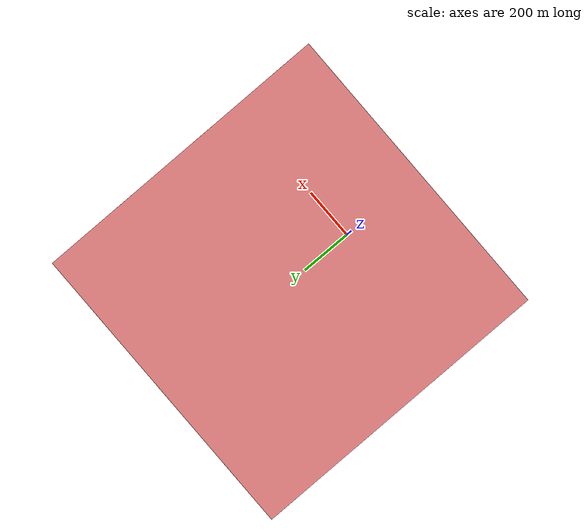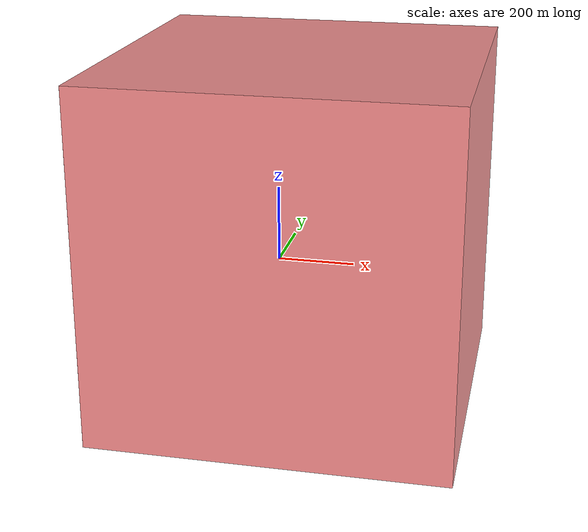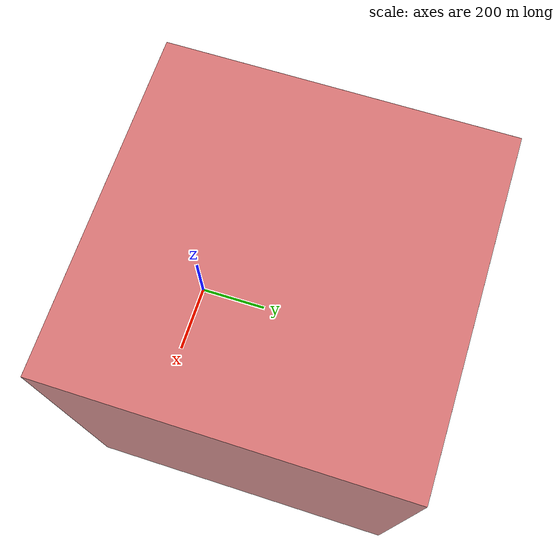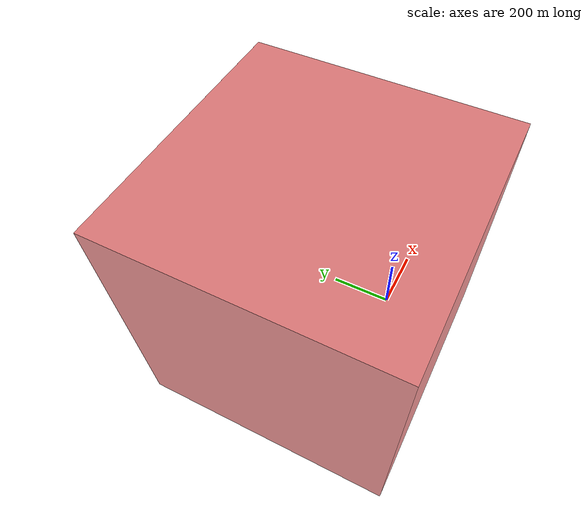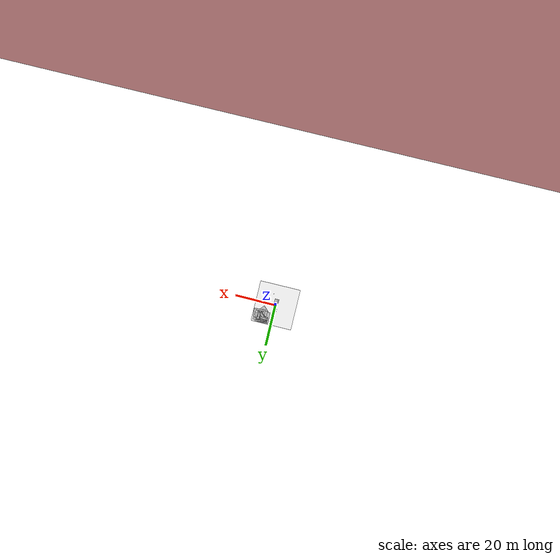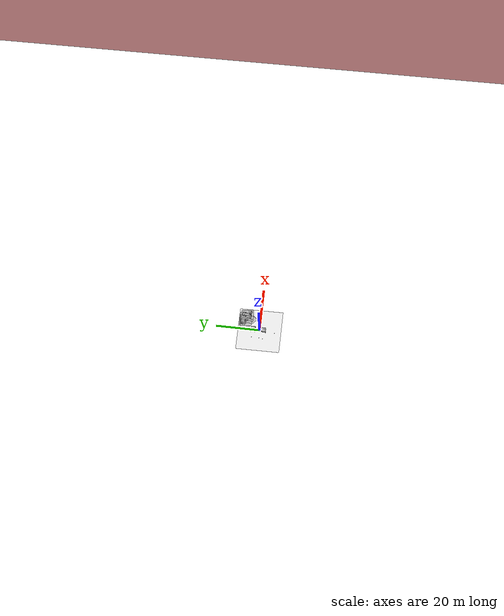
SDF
<sdf version="1.6">
 <world name="default">
  <light name="sun" type="directional">
   <pose>0 0 10 0 -0 0</pose>
   <diffuse>0.8 0.8 0.8 1</diffuse>
   <specular>0.1 0.1 0.1 1</specular>
   <attenuation>
    <range>1000</range>
    <constant>0.9</constant>
    <linear>0.01</linear>
    <quadratic>0.001</quadratic>
   </attenuation>
   <direction>-0.5 0.5 -1</direction>
  </light>
  <gravity>0 0 -9.8</gravity>
  <magnetic_field>6e-06 2.3e-05 -4.2e-05</magnetic_field>
  <atmosphere type="adiabatic"/>
  <physics name="default_physics" default="0" type="ode">
   <max_step_size>0.001</max_step_size>
   <real_time_factor>1</real_time_factor>
   <real_time_update_rate>1000</real_time_update_rate>
  </physics>
  <scene>
   <sky><clouds><speed>12</speed></clouds></sky>
   <ambient>0.4 0.4 0.4 1</ambient>
   <background>0.7 0.7 0.7 1</background>
   <shadows>1</shadows>
  </scene>
  <spherical_coordinates>
   <surface_model>EARTH_WGS84</surface_model>
   <latitude_deg>0</latitude_deg>
   <longitude_deg>0</longitude_deg>
   <elevation>0</elevation>
   <heading_deg>0</heading_deg>
  </spherical_coordinates>
  <model name="red_sky_filter">
   <link name="link_1">
    <visual name="visual1">
     <pose>-500 0 0 0 -0 1.5708</pose>
     <geometry><box><size>1000 0.1 1000</size></box></geometry>
     <material>
      <script><name>Gazebo/Red</name><uri>__default__</uri></script>
      <ambient>1 0 0 1</ambient>
      <diffuse>1 0 0 1</diffuse>
      <specular>1 0 0 1</specular>
      <emissive>1 0 0 1</emissive>
     </material>
     <transparency>0.4</transparency>
    </visual>
    <visual name="visual2">
     <pose>500 0 0 0 -0 1.5708</pose>
     <geometry><box><size>1000 0.1 1000</size></box></geometry>
     <material>
      <script><name>Gazebo/Red</name><uri>__default__</uri></script>
      <ambient>1 0 0 1</ambient>
      <diffuse>1 0 0 1</diffuse>
      <specular>1 0 0 1</specular>
      <emissive>1 0 0 1</emissive>
     </material>
     <transparency>0.4</transparency>
    </visual>
    <visual name="visual3">
     <pose>0 500 0 0 -0 0</pose>
     <geometry><box><size>1000 0.1 1000</size></box></geometry>
     <material>
      <script><name>Gazebo/Red</name><uri>__default__</uri></script>
      <ambient>1 0 0 1</ambient>
      <diffuse>1 0 0 1</diffuse>
      <specular>1 0 0 1</specular>
      <emissive>1 0 0 1</emissive>
     </material>
     <transparency>0.4</transparency>
    </visual>
    <visual name="visual4">
     <pose>0 -500 0 0 -0 0</pose>
     <geometry><box><size>1000 0.1 1000</size></box></geometry>
     <material>
      <script><name>Gazebo/Red</name><uri>__default__</uri></script>
      <ambient>1 0 0 1</ambient>
      <diffuse>1 0 0 1</diffuse>
      <specular>1 0 0 1</specular>
      <emissive>1 0 0 1</emissive>
     </material>
     <transparency>0.4</transparency>
    </visual>
    <visual name="visual5">
     <pose>0 0 500 0 -0 0</pose>
     <geometry><box><size>1000 1000 0.1</size></box></geometry>
     <material>
      <script><name>Gazebo/Red</name><uri>__default__</uri></script>
      <ambient>1 0 0 1</ambient>
      <diffuse>1 0 0 1</diffuse>
      <specular>1 0 0 1</specular>
      <emissive>1 0 0 1</emissive>
     </material>
     <transparency>0.4</transparency>
    </visual>
   </link>
   <static>1</static>
   <pose>3.85599 267.547 0 0 -0 0</pose>
  </model>
  <model name="collection_disk">
   <static>1</static>
   <link name="link">
    <visual name="visual">
     <geometry><box><size>1.016 1.016 0.001</size></box></geometry>
     <material>
      <script>
       <uri>model://collection_disk/materials/scripts</uri>
       <uri>model://collection_disk/materials/textures</uri>
       <name>collection_disk/Diffuse</name>
      </script>
     </material>
    </visual>
   </link>
   <plugin name="score_sim" filename="libgazebo_plugins_score.so">
    <scoreTopic>/collectionZone/score</scoreTopic>
    <collectionZoneSquareSize>1.016</collectionZoneSquareSize>
    <updateRate>0.2</updateRate>
   </plugin>
   <pose>0 3 0 0 -0 0</pose>
  </model>
  <model name="collection_disk_0">
   <static>1</static>
   <link name="link">
    <visual name="visual">
     <geometry><box><size>1.016 1.016 0.001</size></box></geometry>
     <material>
      <script>
       <uri>model://collection_disk/materials/scripts</uri>
       <uri>model://collection_disk/materials/textures</uri>
       <name>collection_disk/Diffuse</name>
      </script>
     </material>
    </visual>
   </link>
   <plugin name="score_sim" filename="libgazebo_plugins_score.so">
    <scoreTopic>/collectionZone/score</scoreTopic>
    <collectionZoneSquareSize>1.016</collectionZoneSquareSize>
    <updateRate>0.2</updateRate>
   </plugin>
   <pose>0 -2 0 0 -0 0</pose>
  </model>
  <model name="mission_to_mars_ground_plane_0">
   <static>1</static>
   <link name="link">
    <collision name="collision">
     <geometry><plane><normal>0 0 1</normal><size>20 20</size></plane></geometry>
     <surface><friction><ode><mu>100</mu><mu2>50</mu2></ode></friction></surface>
    </collision>
    <visual name="visual">
     <cast_shadows>0</cast_shadows>
     <geometry><plane><normal>0 0 1</normal><size>20 20</size></plane></geometry>
     <material>
      <script>
       <uri>model://media/materials/scripts</uri>
       <uri>model://media/materials/textures</uri>
       <name>MissionToMarsGround/Image</name>
      </script>
     </material>
    </visual>
   </link>
   <pose>-0.014064 -0.053068 0 0 -0 0</pose>
  </model>
  <model name="swarm_rock">
   <pose>4.38772 7.73055 -0.195688 3.14155 0.001592 1.54453</pose>
   <static>1</static>
   <link name="link">
    <collision name="collision">
     <geometry><mesh><uri>model://swarm_rock/meshes/swarm_rock.dae</uri><scale>1 1 1</scale></mesh></geometry>
    </collision>
    <visual name="visual">
     <geometry><mesh><uri>model://swarm_rock/meshes/swarm_rock.dae</uri><scale>1 1 1</scale></mesh></geometry>
    </visual>
   </link>
  </model>
  <model name="swarm_rock_0">
   <pose>5.95189 7.07062 -0.792328 3.14056 0.001213 0.865907</pose>
   <static>1</static>
   <link name="link">
    <collision name="collision">
     <geometry><mesh><uri>model://swarm_rock/meshes/swarm_rock.dae</uri><scale>1 1 1</scale></mesh></geometry>
    </collision>
    <visual name="visual">
     <geometry><mesh><uri>model://swarm_rock/meshes/swarm_rock.dae</uri><scale>1 1 1</scale></mesh></geometry>
    </visual>
   </link>
  </model>
  <model name="swarm_rock_1">
   <pose>5.82878 6.02298 -0.412309 3.1405 0.001156 0.811984</pose>
   <static>1</static>
   <link name="link">
    <collision name="collision">
     <geometry><mesh><uri>model://swarm_rock/meshes/swarm_rock.dae</uri><scale>1 1 1</scale></mesh></geometry>
    </collision>
    <visual name="visual">
     <geometry><mesh><uri>model://swarm_rock/meshes/swarm_rock.dae</uri><scale>1 1 1</scale></mesh></geometry>
    </visual>
   </link>
  </model>
  <model name="swarm_rock_2">
   <pose>7.92801 6.14651 0 3.14 -0 0</pose>
   <static>1</static>
   <link name="link">
    <collision name="collision">
     <geometry><mesh><uri>model://swarm_rock/meshes/swarm_rock.dae</uri><scale>1 1 1</scale></mesh></geometry>
    </collision>
    <visual name="visual">
     <geometry><mesh><uri>model://swarm_rock/meshes/swarm_rock.dae</uri><scale>1 1 1</scale></mesh></geometry>
    </visual>
   </link>
  </model>
  <model name="swarm_rock_3">
   <pose>4.64286 8.05527 -0.429706 3.14148 0.001589 1.5014</pose>
   <static>1</static>
   <link name="link">
    <collision name="collision">
     <geometry><mesh><uri>model://swarm_rock/meshes/swarm_rock.dae</uri><scale>1 1 1</scale></mesh></geometry>
    </collision>
    <visual name="visual">
     <geometry><mesh><uri>model://swarm_rock/meshes/swarm_rock.dae</uri><scale>1 1 1</scale></mesh></geometry>
    </visual>
   </link>
  </model>
  <model name="swarm_rock_4">
   <pose>6.83655 6.63858 0.001149 3.14 -0 0</pose>
   <static>1</static>
   <link name="link">
    <collision name="collision">
     <geometry><mesh><uri>model://swarm_rock/meshes/swarm_rock.dae</uri><scale>1 1 1</scale></mesh></geometry>
    </collision>
    <visual name="visual">
     <geometry><mesh><uri>model://swarm_rock/meshes/swarm_rock.dae</uri><scale>1 1 1</scale></mesh></geometry>
    </visual>
   </link>
  </model>
  <model name="tent">
   <pose>0.08978 2.87404 -0.451601 0 -0 0</pose>
   <static>1</static>
   <link name="link">
    <collision name="collision">
     <geometry><mesh><uri>model://tent/meshes/tent.dae</uri><scale>1 1 1</scale></mesh></geometry>
    </collision>
    <visual name="visual">
     <geometry><mesh><uri>model://tent/meshes/tent.dae</uri><scale>1 1 1</scale></mesh></geometry>
    </visual>
   </link>
  </model>
  <model name="tent_0">
   <pose>-0.009405 -1.98185 -0.567568 0 -0 0</pose>
   <static>1</static>
   <link name="link">
    <collision name="collision">
     <geometry><mesh><uri>model://tent/meshes/tent.dae</uri><scale>1 1 1</scale></mesh></geometry>
    </collision>
    <visual name="visual">
     <geometry><mesh><uri>model://tent/meshes/tent.dae</uri><scale>1 1 1</scale></mesh></geometry>
    </visual>
   </link>
  </model>
  <model name="at1_0">
   <static>0</static>
   <link name="link">
    <inertial>
     <mass>0.01</mass>
     <inertia><ixx>4e-05</ixx><ixy>0</ixy><ixz>0</ixz><iyy>4e-05</iyy><iyz>0</iyz><izz>4e-05</izz></inertia>
    </inertial>
    <visual name="visual">
     <geometry><box><size>0.05 0.05 0.05</size></box></geometry>
     <material>
      <script>
       <uri>model://at1/materials/scripts</uri>
       <uri>model://at1/materials/textures</uri>
       <name>at1/Diffuse</name>
      </script>
     </material>
    </visual>
    <collision name="collision">
     <geometry><box><size>0.05 0.05 0.05</size></box></geometry>
     <surface><friction><ode><mu>0.8</mu><mu2>0.7</mu2></ode></friction></surface>
    </collision>
   </link>
   <pose>2.83394 -4.89461 0.025 0 -0 0</pose>
  </model>
  <model name="at1_2">
   <static>0</static>
   <link name="link">
    <inertial>
     <mass>0.01</mass>
     <inertia><ixx>4e-05</ixx><ixy>0</ixy><ixz>0</ixz><iyy>4e-05</iyy><iyz>0</iyz><izz>4e-05</izz></inertia>
    </inertial>
    <visual name="visual">
     <geometry><box><size>0.05 0.05 0.05</size></box></geometry>
     <material>
      <script>
       <uri>model://at1/materials/scripts</uri>
       <uri>model://at1/materials/textures</uri>
       <name>at1/Diffuse</name>
      </script>
     </material>
    </visual>
    <collision name="collision">
     <geometry><box><size>0.05 0.05 0.05</size></box></geometry>
     <surface><friction><ode><mu>0.8</mu><mu2>0.7</mu2></ode></friction></surface>
    </collision>
   </link>
   <pose>2.67206 -5.20706 0.025 0 -0 0</pose>
  </model>
  <model name="at1_3">
   <static>0</static>
   <link name="link">
    <inertial>
     <mass>0.01</mass>
     <inertia><ixx>4e-05</ixx><ixy>0</ixy><ixz>0</ixz><iyy>4e-05</iyy><iyz>0</iyz><izz>4e-05</izz></inertia>
    </inertial>
    <visual name="visual">
     <geometry><box><size>0.05 0.05 0.05</size></box></geometry>
     <material>
      <script>
       <uri>model://at1/materials/scripts</uri>
       <uri>model://at1/materials/textures</uri>
       <name>at1/Diffuse</name>
      </script>
     </material>
    </visual>
    <collision name="collision">
     <geometry><box><size>0.05 0.05 0.05</size></box></geometry>
     <surface><friction><ode><mu>0.8</mu><mu2>0.7</mu2></ode></friction></surface>
    </collision>
   </link>
   <pose>2.52671 -5.71876 0.025 0 -0 0</pose>
  </model>
  <model name="at1_5">
   <static>0</static>
   <link name="link">
    <inertial>
     <mass>0.01</mass>
     <inertia><ixx>4e-05</ixx><ixy>0</ixy><ixz>0</ixz><iyy>4e-05</iyy><iyz>0</iyz><izz>4e-05</izz></inertia>
    </inertial>
    <visual name="visual">
     <geometry><box><size>0.05 0.05 0.05</size></box></geometry>
     <material>
      <script>
       <uri>model://at1/materials/scripts</uri>
       <uri>model://at1/materials/textures</uri>
       <name>at1/Diffuse</name>
      </script>
     </material>
    </visual>
    <collision name="collision">
     <geometry><box><size>0.05 0.05 0.05</size></box></geometry>
     <surface><friction><ode><mu>0.8</mu><mu2>0.7</mu2></ode></friction></surface>
    </collision>
   </link>
   <pose>0.632368 -8.5522 0.025 0 -0 0</pose>
  </model>
  <model name="at1_6">
   <static>0</static>
   <link name="link">
    <inertial>
     <mass>0.01</mass>
     <inertia><ixx>4e-05</ixx><ixy>0</ixy><ixz>0</ixz><iyy>4e-05</iyy><iyz>0</iyz><izz>4e-05</izz></inertia>
    </inertial>
    <visual name="visual">
     <geometry><box><size>0.05 0.05 0.05</size></box></geometry>
     <material>
      <script>
       <uri>model://at1/materials/scripts</uri>
       <uri>model://at1/materials/textures</uri>
       <name>at1/Diffuse</name>
      </script>
     </material>
    </visual>
    <collision name="collision">
     <geometry><box><size>0.05 0.05 0.05</size></box></geometry>
     <surface><friction><ode><mu>0.8</mu><mu2>0.7</mu2></ode></friction></surface>
    </collision>
   </link>
   <pose>1.38057 -7.98923 0.025 0 -0 0</pose>
  </model>
  <model name="at1_9">
   <static>0</static>
   <link name="link">
    <inertial>
     <mass>0.01</mass>
     <inertia><ixx>4e-05</ixx><ixy>0</ixy><ixz>0</ixz><iyy>4e-05</iyy><iyz>0</iyz><izz>4e-05</izz></inertia>
    </inertial>
    <visual name="visual">
     <geometry><box><size>0.05 0.05 0.05</size></box></geometry>
     <material>
      <script>
       <uri>model://at1/materials/scripts</uri>
       <uri>model://at1/materials/textures</uri>
       <name>at1/Diffuse</name>
      </script>
     </material>
    </visual>
    <collision name="collision">
     <geometry><box><size>0.05 0.05 0.05</size></box></geometry>
     <surface><friction><ode><mu>0.8</mu><mu2>0.7</mu2></ode></friction></surface>
    </collision>
   </link>
   <pose>0.235516 -8.51583 0.025 0 -0 0</pose>
  </model>
  <model name="at1_10">
   <static>0</static>
   <link name="link">
    <inertial>
     <mass>0.01</mass>
     <inertia><ixx>4e-05</ixx><ixy>0</ixy><ixz>0</ixz><iyy>4e-05</iyy><iyz>0</iyz><izz>4e-05</izz></inertia>
    </inertial>
    <visual name="visual">
     <geometry><box><size>0.05 0.05 0.05</size></box></geometry>
     <material>
      <script>
       <uri>model://at1/materials/scripts</uri>
       <uri>model://at1/materials/textures</uri>
       <name>at1/Diffuse</name>
      </script>
     </material>
    </visual>
    <collision name="collision">
     <geometry><box><size>0.05 0.05 0.05</size></box></geometry>
     <surface><friction><ode><mu>0.8</mu><mu2>0.7</mu2></ode></friction></surface>
    </collision>
   </link>
   <pose>1.52624 -5.13409 0.025 0 -0 0</pose>
  </model>
  <model name="at1_11">
   <static>0</static>
   <link name="link">
    <inertial>
     <mass>0.01</mass>
     <inertia><ixx>4e-05</ixx><ixy>0</ixy><ixz>0</ixz><iyy>4e-05</iyy><iyz>0</iyz><izz>4e-05</izz></inertia>
    </inertial>
    <visual name="visual">
     <geometry><box><size>0.05 0.05 0.05</size></box></geometry>
     <material>
      <script>
       <uri>model://at1/materials/scripts</uri>
       <uri>model://at1/materials/textures</uri>
       <name>at1/Diffuse</name>
      </script>
     </material>
    </visual>
    <collision name="collision">
     <geometry><box><size>0.05 0.05 0.05</size></box></geometry>
     <surface><friction><ode><mu>0.8</mu><mu2>0.7</mu2></ode></friction></surface>
    </collision>
   </link>
   <pose>-0.376543 -7.89512 0.025 0 -0 0</pose>
  </model>
  <model name="at1_12">
   <static>0</static>
   <link name="link">
    <inertial>
     <mass>0.01</mass>
     <inertia><ixx>4e-05</ixx><ixy>0</ixy><ixz>0</ixz><iyy>4e-05</iyy><iyz>0</iyz><izz>4e-05</izz></inertia>
    </inertial>
    <visual name="visual">
     <geometry><box><size>0.05 0.05 0.05</size></box></geometry>
     <material>
      <script>
       <uri>model://at1/materials/scripts</uri>
       <uri>model://at1/materials/textures</uri>
       <name>at1/Diffuse</name>
      </script>
     </material>
    </visual>
    <collision name="collision">
     <geometry><box><size>0.05 0.05 0.05</size></box></geometry>
     <surface><friction><ode><mu>0.8</mu><mu2>0.7</mu2></ode></friction></surface>
    </collision>
   </link>
   <pose>-0.937396 -8.39225 0.025 0 -0 0</pose>
  </model>
  <model name="at1_13">
   <static>0</static>
   <link name="link">
    <inertial>
     <mass>0.01</mass>
     <inertia><ixx>4e-05</ixx><ixy>0</ixy><ixz>0</ixz><iyy>4e-05</iyy><iyz>0</iyz><izz>4e-05</izz></inertia>
    </inertial>
    <visual name="visual">
     <geometry><box><size>0.05 0.05 0.05</size></box></geometry>
     <material>
      <script>
       <uri>model://at1/materials/scripts</uri>
       <uri>model://at1/materials/textures</uri>
       <name>at1/Diffuse</name>
      </script>
     </material>
    </visual>
    <collision name="collision">
     <geometry><box><size>0.05 0.05 0.05</size></box></geometry>
     <surface><friction><ode><mu>0.8</mu><mu2>0.7</mu2></ode></friction></surface>
    </collision>
   </link>
   <pose>-1.47434 -7.17678 0.025 0 -0 0</pose>
  </model>
  <model name="at1_45">
   <static>0</static>
   <link name="link">
    <inertial>
     <mass>0.01</mass>
     <inertia><ixx>4e-05</ixx><ixy>0</ixy><ixz>0</ixz><iyy>4e-05</iyy><iyz>0</iyz><izz>4e-05</izz></inertia>
    </inertial>
    <visual name="visual">
     <geometry><box><size>0.05 0.05 0.05</size></box></geometry>
     <material>
      <script>
       <uri>model://at1/materials/scripts</uri>
       <uri>model://at1/materials/textures</uri>
       <name>at1/Diffuse</name>
      </script>
     </material>
    </visual>
    <collision name="collision">
     <geometry><box><size>0.05 0.05 0.05</size></box></geometry>
     <surface><friction><ode><mu>0.8</mu><mu2>0.7</mu2></ode></friction></surface>
    </collision>
   </link>
   <pose>-1.32117 -6.99604 0.025 0 -0 0</pose>
  </model>
  <model name="at1_46">
   <static>0</static>
   <link name="link">
    <inertial>
     <mass>0.01</mass>
     <inertia><ixx>4e-05</ixx><ixy>0</ixy><ixz>0</ixz><iyy>4e-05</iyy><iyz>0</iyz><izz>4e-05</izz></inertia>
    </inertial>
    <visual name="visual">
     <geometry><box><size>0.05 0.05 0.05</size></box></geometry>
     <material>
      <script>
       <uri>model://at1/materials/scripts</uri>
       <uri>model://at1/materials/textures</uri>
       <name>at1/Diffuse</name>
      </script>
     </material>
    </visual>
    <collision name="collision">
     <geometry><box><size>0.05 0.05 0.05</size></box></geometry>
     <surface><friction><ode><mu>0.8</mu><mu2>0.7</mu2></ode></friction></surface>
    </collision>
   </link>
   <pose>-0.878722 -7.84688 0.025 0 -0 0</pose>
  </model>
  <model name="at1_47">
   <static>0</static>
   <link name="link">
    <inertial>
     <mass>0.01</mass>
     <inertia><ixx>4e-05</ixx><ixy>0</ixy><ixz>0</ixz><iyy>4e-05</iyy><iyz>0</iyz><izz>4e-05</izz></inertia>
    </inertial>
    <visual name="visual">
     <geometry><box><size>0.05 0.05 0.05</size></box></geometry>
     <material>
      <script>
       <uri>model://at1/materials/scripts</uri>
       <uri>model://at1/materials/textures</uri>
       <name>at1/Diffuse</name>
      </script>
     </material>
    </visual>
    <collision name="collision">
     <geometry><box><size>0.05 0.05 0.05</size></box></geometry>
     <surface><friction><ode><mu>0.8</mu><mu2>0.7</mu2></ode></friction></surface>
    </collision>
   </link>
   <pose>-0.864452 -7.13948 0.025 0 -0 0</pose>
  </model>
  <model name="at1_48">
   <static>0</static>
   <link name="link">
    <inertial>
     <mass>0.01</mass>
     <inertia><ixx>4e-05</ixx><ixy>0</ixy><ixz>0</ixz><iyy>4e-05</iyy><iyz>0</iyz><izz>4e-05</izz></inertia>
    </inertial>
    <visual name="visual">
     <geometry><box><size>0.05 0.05 0.05</size></box></geometry>
     <material>
      <script>
       <uri>model://at1/materials/scripts</uri>
       <uri>model://at1/materials/textures</uri>
       <name>at1/Diffuse</name>
      </script>
     </material>
    </visual>
    <collision name="collision">
     <geometry><box><size>0.05 0.05 0.05</size></box></geometry>
     <surface><friction><ode><mu>0.8</mu><mu2>0.7</mu2></ode></friction></surface>
    </collision>
   </link>
   <pose>-0.20425 -8.93477 0.025 0 -0 0</pose>
  </model>
  <model name="at1_49">
   <static>0</static>
   <link name="link">
    <inertial>
     <mass>0.01</mass>
     <inertia><ixx>4e-05</ixx><ixy>0</ixy><ixz>0</ixz><iyy>4e-05</iyy><iyz>0</iyz><izz>4e-05</izz></inertia>
    </inertial>
    <visual name="visual">
     <geometry><box><size>0.05 0.05 0.05</size></box></geometry>
     <material>
      <script>
       <uri>model://at1/materials/scripts</uri>
       <uri>model://at1/materials/textures</uri>
       <name>at1/Diffuse</name>
      </script>
     </material>
    </visual>
    <collision name="collision">
     <geometry><box><size>0.05 0.05 0.05</size></box></geometry>
     <surface><friction><ode><mu>0.8</mu><mu2>0.7</mu2></ode></friction></surface>
    </collision>
   </link>
   <pose>0.575766 -4.76624 0.025 0 -0 0</pose>
  </model>
  <model name="at1_50">
   <static>0</static>
   <link name="link">
    <inertial>
     <mass>0.01</mass>
     <inertia><ixx>4e-05</ixx><ixy>0</ixy><ixz>0</ixz><iyy>4e-05</iyy><iyz>0</iyz><izz>4e-05</izz></inertia>
    </inertial>
    <visual name="visual">
     <geometry><box><size>0.05 0.05 0.05</size></box></geometry>
     <material>
      <script>
       <uri>model://at1/materials/scripts</uri>
       <uri>model://at1/materials/textures</uri>
       <name>at1/Diffuse</name>
      </script>
     </material>
    </visual>
    <collision name="collision">
     <geometry><box><size>0.05 0.05 0.05</size></box></geometry>
     <surface><friction><ode><mu>0.8</mu><mu2>0.7</mu2></ode></friction></surface>
    </collision>
   </link>
   <pose>-0.614262 -7.29269 0.025 0 -0 0</pose>
  </model>
  <model name="at1_51">
   <static>0</static>
   <link name="link">
    <inertial>
     <mass>0.01</mass>
     <inertia><ixx>4e-05</ixx><ixy>0</ixy><ixz>0</ixz><iyy>4e-05</iyy><iyz>0</iyz><izz>4e-05</izz></inertia>
    </inertial>
    <visual name="visual">
     <geometry><box><size>0.05 0.05 0.05</size></box></geometry>
     <material>
      <script>
       <uri>model://at1/materials/scripts</uri>
       <uri>model://at1/materials/textures</uri>
       <name>at1/Diffuse</name>
      </script>
     </material>
    </visual>
    <collision name="collision">
     <geometry><box><size>0.05 0.05 0.05</size></box></geometry>
     <surface><friction><ode><mu>0.8</mu><mu2>0.7</mu2></ode></friction></surface>
    </collision>
   </link>
   <pose>0.941102 -8.19833 0.025 0 -0 0</pose>
  </model>
  <model name="at1_52">
   <static>0</static>
   <link name="link">
    <inertial>
     <mass>0.01</mass>
     <inertia><ixx>4e-05</ixx><ixy>0</ixy><ixz>0</ixz><iyy>4e-05</iyy><iyz>0</iyz><izz>4e-05</izz></inertia>
    </inertial>
    <visual name="visual">
     <geometry><box><size>0.05 0.05 0.05</size></box></geometry>
     <material>
      <script>
       <uri>model://at1/materials/scripts</uri>
       <uri>model://at1/materials/textures</uri>
       <name>at1/Diffuse</name>
      </script>
     </material>
    </visual>
    <collision name="collision">
     <geometry><box><size>0.05 0.05 0.05</size></box></geometry>
     <surface><friction><ode><mu>0.8</mu><mu2>0.7</mu2></ode></friction></surface>
    </collision>
   </link>
   <pose>2.64135 -4.21007 0.025 0 -0 0</pose>
  </model>
  <model name="at1_53">
   <static>0</static>
   <link name="link">
    <inertial>
     <mass>0.01</mass>
     <inertia><ixx>4e-05</ixx><ixy>0</ixy><ixz>0</ixz><iyy>4e-05</iyy><iyz>0</iyz><izz>4e-05</izz></inertia>
    </inertial>
    <visual name="visual">
     <geometry><box><size>0.05 0.05 0.05</size></box></geometry>
     <material>
      <script>
       <uri>model://at1/materials/scripts</uri>
       <uri>model://at1/materials/textures</uri>
       <name>at1/Diffuse</name>
      </script>
     </material>
    </visual>
    <collision name="collision">
     <geometry><box><size>0.05 0.05 0.05</size></box></geometry>
     <surface><friction><ode><mu>0.8</mu><mu2>0.7</mu2></ode></friction></surface>
    </collision>
   </link>
   <pose>2.11962 -5.21835 0.025 0 -0 0</pose>
  </model>
  <model name="at0_51">
   <static>0</static>
   <link name="link">
    <inertial>
     <mass>0.01</mass>
     <inertia><ixx>4e-05</ixx><ixy>0</ixy><ixz>0</ixz><iyy>4e-05</iyy><iyz>0</iyz><izz>4e-05</izz></inertia>
    </inertial>
    <visual name="visual">
     <geometry><box><size>0.05 0.05 0.05</size></box></geometry>
     <material>
      <script>
       <uri>model://at0/materials/scripts</uri>
       <uri>model://at0/materials/textures</uri>
       <name>at0/Diffuse</name>
      </script>
     </material>
    </visual>
    <collision name="collision">
     <geometry><box><size>0.05 0.05 0.05</size></box></geometry>
     <surface><friction><ode><mu>0.8</mu><mu2>0.7</mu2></ode></friction></surface>
    </collision>
   </link>
   <pose>-3.30064 4.18481 0.025 0 -0 0</pose>
  </model>
  <model name="at0_52">
   <static>0</static>
   <link name="link">
    <inertial>
     <mass>0.01</mass>
     <inertia><ixx>4e-05</ixx><ixy>0</ixy><ixz>0</ixz><iyy>4e-05</iyy><iyz>0</iyz><izz>4e-05</izz></inertia>
    </inertial>
    <visual name="visual">
     <geometry><box><size>0.05 0.05 0.05</size></box></geometry>
     <material>
      <script>
       <uri>model://at0/materials/scripts</uri>
       <uri>model://at0/materials/textures</uri>
       <name>at0/Diffuse</name>
      </script>
     </material>
    </visual>
    <collision name="collision">
     <geometry><box><size>0.05 0.05 0.05</size></box></geometry>
     <surface><friction><ode><mu>0.8</mu><mu2>0.7</mu2></ode></friction></surface>
    </collision>
   </link>
   <pose>-3.51922 3.70486 0.025 0 -0 0</pose>
  </model>
  <model name="at0_53">
   <static>0</static>
   <link name="link">
    <inertial>
     <mass>0.01</mass>
     <inertia><ixx>4e-05</ixx><ixy>0</ixy><ixz>0</ixz><iyy>4e-05</iyy><iyz>0</iyz><izz>4e-05</izz></inertia>
    </inertial>
    <visual name="visual">
     <geometry><box><size>0.05 0.05 0.05</size></box></geometry>
     <material>
      <script>
       <uri>model://at0/materials/scripts</uri>
       <uri>model://at0/materials/textures</uri>
       <name>at0/Diffuse</name>
      </script>
     </material>
    </visual>
    <collision name="collision">
     <geometry><box><size>0.05 0.05 0.05</size></box></geometry>
     <surface><friction><ode><mu>0.8</mu><mu2>0.7</mu2></ode></friction></surface>
    </collision>
   </link>
   <pose>-3.09719 4.57942 0.025 0 -0 0</pose>
  </model>
  <model name="at0_54">
   <static>0</static>
   <link name="link">
    <inertial>
     <mass>0.01</mass>
     <inertia><ixx>4e-05</ixx><ixy>0</ixy><ixz>0</ixz><iyy>4e-05</iyy><iyz>0</iyz><izz>4e-05</izz></inertia>
    </inertial>
    <visual name="visual">
     <geometry><box><size>0.05 0.05 0.05</size></box></geometry>
     <material>
      <script>
       <uri>model://at0/materials/scripts</uri>
       <uri>model://at0/materials/textures</uri>
       <name>at0/Diffuse</name>
      </script>
     </material>
    </visual>
    <collision name="collision">
     <geometry><box><size>0.05 0.05 0.05</size></box></geometry>
     <surface><friction><ode><mu>0.8</mu><mu2>0.7</mu2></ode></friction></surface>
    </collision>
   </link>
   <pose>-3.25079 5.01859 0.025 0 -0 0</pose>
  </model>
  <model name="at0_66">
   <static>0</static>
   <link name="link">
    <inertial>
     <mass>0.01</mass>
     <inertia><ixx>4e-05</ixx><ixy>0</ixy><ixz>0</ixz><iyy>4e-05</iyy><iyz>0</iyz><izz>4e-05</izz></inertia>
    </inertial>
    <visual name="visual">
     <geometry><box><size>0.05 0.05 0.05</size></box></geometry>
     <material>
      <script>
       <uri>model://at0/materials/scripts</uri>
       <uri>model://at0/materials/textures</uri>
       <name>at0/Diffuse</name>
      </script>
     </material>
    </visual>
    <collision name="collision">
     <geometry><box><size>0.05 0.05 0.05</size></box></geometry>
     <surface><friction><ode><mu>0.8</mu><mu2>0.7</mu2></ode></friction></surface>
    </collision>
   </link>
   <pose>-3.90645 1.69817 0.025 0 -0 0</pose>
  </model>
  <model name="at0_67">
   <static>0</static>
   <link name="link">
    <inertial>
     <mass>0.01</mass>
     <inertia><ixx>4e-05</ixx><ixy>0</ixy><ixz>0</ixz><iyy>4e-05</iyy><iyz>0</iyz><izz>4e-05</izz></inertia>
    </inertial>
    <visual name="visual">
     <geometry><box><size>0.05 0.05 0.05</size></box></geometry>
     <material>
      <script>
       <uri>model://at0/materials/scripts</uri>
       <uri>model://at0/materials/textures</uri>
       <name>at0/Diffuse</name>
      </script>
     </material>
    </visual>
    <collision name="collision">
     <geometry><box><size>0.05 0.05 0.05</size></box></geometry>
     <surface><friction><ode><mu>0.8</mu><mu2>0.7</mu2></ode></friction></surface>
    </collision>
   </link>
   <pose>-3.69324 3.23824 0.025 0 -0 0</pose>
  </model>
  <model name="at0_68">
   <static>0</static>
   <link name="link">
    <inertial>
     <mass>0.01</mass>
     <inertia><ixx>4e-05</ixx><ixy>0</ixy><ixz>0</ixz><iyy>4e-05</iyy><iyz>0</iyz><izz>4e-05</izz></inertia>
    </inertial>
    <visual name="visual">
     <geometry><box><size>0.05 0.05 0.05</size></box></geometry>
     <material>
      <script>
       <uri>model://at0/materials/scripts</uri>
       <uri>model://at0/materials/textures</uri>
       <name>at0/Diffuse</name>
      </script>
     </material>
    </visual>
    <collision name="collision">
     <geometry><box><size>0.05 0.05 0.05</size></box></geometry>
     <surface><friction><ode><mu>0.8</mu><mu2>0.7</mu2></ode></friction></surface>
    </collision>
   </link>
   <pose>-3.84041 2.62828 0.025 0 -0 0</pose>
  </model>
  <model name="at0_69">
   <static>0</static>
   <link name="link">
    <inertial>
     <mass>0.01</mass>
     <inertia><ixx>4e-05</ixx><ixy>0</ixy><ixz>0</ixz><iyy>4e-05</iyy><iyz>0</iyz><izz>4e-05</izz></inertia>
    </inertial>
    <visual name="visual">
     <geometry><box><size>0.05 0.05 0.05</size></box></geometry>
     <material>
      <script>
       <uri>model://at0/materials/scripts</uri>
       <uri>model://at0/materials/textures</uri>
       <name>at0/Diffuse</name>
      </script>
     </material>
    </visual>
    <collision name="collision">
     <geometry><box><size>0.05 0.05 0.05</size></box></geometry>
     <surface><friction><ode><mu>0.8</mu><mu2>0.7</mu2></ode></friction></surface>
    </collision>
   </link>
   <pose>-3.90213 2.15243 0.025 0 -0 0</pose>
  </model>
  <model name="at0_70">
   <static>0</static>
   <link name="link">
    <inertial>
     <mass>0.01</mass>
     <inertia><ixx>4e-05</ixx><ixy>0</ixy><ixz>0</ixz><iyy>4e-05</iyy><iyz>0</iyz><izz>4e-05</izz></inertia>
    </inertial>
    <visual name="visual">
     <geometry><box><size>0.05 0.05 0.05</size></box></geometry>
     <material>
      <script>
       <uri>model://at0/materials/scripts</uri>
       <uri>model://at0/materials/textures</uri>
       <name>at0/Diffuse</name>
      </script>
     </material>
    </visual>
    <collision name="collision">
     <geometry><box><size>0.05 0.05 0.05</size></box></geometry>
     <surface><friction><ode><mu>0.8</mu><mu2>0.7</mu2></ode></friction></surface>
    </collision>
   </link>
   <pose>-3.91168 1.22902 0.025 0 -0 0</pose>
  </model>
  <model name="at0_73">
   <static>0</static>
   <link name="link">
    <inertial>
     <mass>0.01</mass>
     <inertia><ixx>4e-05</ixx><ixy>0</ixy><ixz>0</ixz><iyy>4e-05</iyy><iyz>0</iyz><izz>4e-05</izz></inertia>
    </inertial>
    <visual name="visual">
     <geometry><box><size>0.05 0.05 0.05</size></box></geometry>
     <material>
      <script>
       <uri>model://at0/materials/scripts</uri>
       <uri>model://at0/materials/textures</uri>
       <name>at0/Diffuse</name>
      </script>
     </material>
    </visual>
    <collision name="collision">
     <geometry><box><size>0.05 0.05 0.05</size></box></geometry>
     <surface><friction><ode><mu>0.8</mu><mu2>0.7</mu2></ode></friction></surface>
    </collision>
   </link>
   <pose>-3.84711 0.6569 0.025 0 -0 0</pose>
  </model>
  <model name="at0_74">
   <static>0</static>
   <link name="link">
    <inertial>
     <mass>0.01</mass>
     <inertia><ixx>4e-05</ixx><ixy>0</ixy><ixz>0</ixz><iyy>4e-05</iyy><iyz>0</iyz><izz>4e-05</izz></inertia>
    </inertial>
    <visual name="visual">
     <geometry><box><size>0.05 0.05 0.05</size></box></geometry>
     <material>
      <script>
       <uri>model://at0/materials/scripts</uri>
       <uri>model://at0/materials/textures</uri>
       <name>at0/Diffuse</name>
      </script>
     </material>
    </visual>
    <collision name="collision">
     <geometry><box><size>0.05 0.05 0.05</size></box></geometry>
     <surface><friction><ode><mu>0.8</mu><mu2>0.7</mu2></ode></friction></surface>
    </collision>
   </link>
   <pose>-3.98262 0.224142 0.025 0 -0 0</pose>
  </model>
  <model name="at0_75">
   <static>0</static>
   <link name="link">
    <inertial>
     <mass>0.01</mass>
     <inertia><ixx>4e-05</ixx><ixy>0</ixy><ixz>0</ixz><iyy>4e-05</iyy><iyz>0</iyz><izz>4e-05</izz></inertia>
    </inertial>
    <visual name="visual">
     <geometry><box><size>0.05 0.05 0.05</size></box></geometry>
     <material>
      <script>
       <uri>model://at0/materials/scripts</uri>
       <uri>model://at0/materials/textures</uri>
       <name>at0/Diffuse</name>
      </script>
     </material>
    </visual>
    <collision name="collision">
     <geometry><box><size>0.05 0.05 0.05</size></box></geometry>
     <surface><friction><ode><mu>0.8</mu><mu2>0.7</mu2></ode></friction></surface>
    </collision>
   </link>
   <pose>-3.83861 -0.253526 0.025 0 -0 0</pose>
  </model>
  <model name="at0_76">
   <static>0</static>
   <link name="link">
    <inertial>
     <mass>0.01</mass>
     <inertia><ixx>4e-05</ixx><ixy>0</ixy><ixz>0</ixz><iyy>4e-05</iyy><iyz>0</iyz><izz>4e-05</izz></inertia>
    </inertial>
    <visual name="visual">
     <geometry><box><size>0.05 0.05 0.05</size></box></geometry>
     <material>
      <script>
       <uri>model://at0/materials/scripts</uri>
       <uri>model://at0/materials/textures</uri>
       <name>at0/Diffuse</name>
      </script>
     </material>
    </visual>
    <collision name="collision">
     <geometry><box><size>0.05 0.05 0.05</size></box></geometry>
     <surface><friction><ode><mu>0.8</mu><mu2>0.7</mu2></ode></friction></surface>
    </collision>
   </link>
   <pose>-3.9782 -0.630217 0.025 0 -0 0</pose>
  </model>
  <model name="at0_77">
   <static>0</static>
   <link name="link">
    <inertial>
     <mass>0.01</mass>
     <inertia><ixx>4e-05</ixx><ixy>0</ixy><ixz>0</ixz><iyy>4e-05</iyy><iyz>0</iyz><izz>4e-05</izz></inertia>
    </inertial>
    <visual name="visual">
     <geometry><box><size>0.05 0.05 0.05</size></box></geometry>
     <material>
      <script>
       <uri>model://at0/materials/scripts</uri>
       <uri>model://at0/materials/textures</uri>
       <name>at0/Diffuse</name>
      </script>
     </material>
    </visual>
    <collision name="collision">
     <geometry><box><size>0.05 0.05 0.05</size></box></geometry>
     <surface><friction><ode><mu>0.8</mu><mu2>0.7</mu2></ode></friction></surface>
    </collision>
   </link>
   <pose>-3.95831 -0.969551 0.025 0 -0 0</pose>
  </model>
  <model name="at0_78">
   <static>0</static>
   <link name="link">
    <inertial>
     <mass>0.01</mass>
     <inertia><ixx>4e-05</ixx><ixy>0</ixy><ixz>0</ixz><iyy>4e-05</iyy><iyz>0</iyz><izz>4e-05</izz></inertia>
    </inertial>
    <visual name="visual">
     <geometry><box><size>0.05 0.05 0.05</size></box></geometry>
     <material>
      <script>
       <uri>model://at0/materials/scripts</uri>
       <uri>model://at0/materials/textures</uri>
       <name>at0/Diffuse</name>
      </script>
     </material>
    </visual>
    <collision name="collision">
     <geometry><box><size>0.05 0.05 0.05</size></box></geometry>
     <surface><friction><ode><mu>0.8</mu><mu2>0.7</mu2></ode></friction></surface>
    </collision>
   </link>
   <pose>-3.98268 -1.4662 0.025 0 -0 0</pose>
  </model>
  <model name="at0_79">
   <static>0</static>
   <link name="link">
    <inertial>
     <mass>0.01</mass>
     <inertia><ixx>4e-05</ixx><ixy>0</ixy><ixz>0</ixz><iyy>4e-05</iyy><iyz>0</iyz><izz>4e-05</izz></inertia>
    </inertial>
    <visual name="visual">
     <geometry><box><size>0.05 0.05 0.05</size></box></geometry>
     <material>
      <script>
       <uri>model://at0/materials/scripts</uri>
       <uri>model://at0/materials/textures</uri>
       <name>at0/Diffuse</name>
      </script>
     </material>
    </visual>
    <collision name="collision">
     <geometry><box><size>0.05 0.05 0.05</size></box></geometry>
     <surface><friction><ode><mu>0.8</mu><mu2>0.7</mu2></ode></friction></surface>
    </collision>
   </link>
   <pose>-4.19842 -1.90011 0.025 0 -0 0</pose>
  </model>
  <model name="at0_80">
   <static>0</static>
   <link name="link">
    <inertial>
     <mass>0.01</mass>
     <inertia><ixx>4e-05</ixx><ixy>0</ixy><ixz>0</ixz><iyy>4e-05</iyy><iyz>0</iyz><izz>4e-05</izz></inertia>
    </inertial>
    <visual name="visual">
     <geometry><box><size>0.05 0.05 0.05</size></box></geometry>
     <material>
      <script>
       <uri>model://at0/materials/scripts</uri>
       <uri>model://at0/materials/textures</uri>
       <name>at0/Diffuse</name>
      </script>
     </material>
    </visual>
    <collision name="collision">
     <geometry><box><size>0.05 0.05 0.05</size></box></geometry>
     <surface><friction><ode><mu>0.8</mu><mu2>0.7</mu2></ode></friction></surface>
    </collision>
   </link>
   <pose>-3.9786 -2.32613 0.025 0 -0 0</pose>
  </model>
  <model name="at0_81">
   <static>0</static>
   <link name="link">
    <inertial>
     <mass>0.01</mass>
     <inertia><ixx>4e-05</ixx><ixy>0</ixy><ixz>0</ixz><iyy>4e-05</iyy><iyz>0</iyz><izz>4e-05</izz></inertia>
    </inertial>
    <visual name="visual">
     <geometry><box><size>0.05 0.05 0.05</size></box></geometry>
     <material>
      <script>
       <uri>model://at0/materials/scripts</uri>
       <uri>model://at0/materials/textures</uri>
       <name>at0/Diffuse</name>
      </script>
     </material>
    </visual>
    <collision name="collision">
     <geometry><box><size>0.05 0.05 0.05</size></box></geometry>
     <surface><friction><ode><mu>0.8</mu><mu2>0.7</mu2></ode></friction></surface>
    </collision>
   </link>
   <pose>-4.48144 -2.67789 0.025 0 -0 0</pose>
  </model>
  <model name="at0_82">
   <static>0</static>
   <link name="link">
    <inertial>
     <mass>0.01</mass>
     <inertia><ixx>4e-05</ixx><ixy>0</ixy><ixz>0</ixz><iyy>4e-05</iyy><iyz>0</iyz><izz>4e-05</izz></inertia>
    </inertial>
    <visual name="visual">
     <geometry><box><size>0.05 0.05 0.05</size></box></geometry>
     <material>
      <script>
       <uri>model://at0/materials/scripts</uri>
       <uri>model://at0/materials/textures</uri>
       <name>at0/Diffuse</name>
      </script>
     </material>
    </visual>
    <collision name="collision">
     <geometry><box><size>0.05 0.05 0.05</size></box></geometry>
     <surface><friction><ode><mu>0.8</mu><mu2>0.7</mu2></ode></friction></surface>
    </collision>
   </link>
   <pose>-4.34897 -3.34546 0.025 0 -0 0</pose>
  </model>
  <model name="at0_83">
   <static>0</static>
   <link name="link">
    <inertial>
     <mass>0.01</mass>
     <inertia><ixx>4e-05</ixx><ixy>0</ixy><ixz>0</ixz><iyy>4e-05</iyy><iyz>0</iyz><izz>4e-05</izz></inertia>
    </inertial>
    <visual name="visual">
     <geometry><box><size>0.05 0.05 0.05</size></box></geometry>
     <material>
      <script>
       <uri>model://at0/materials/scripts</uri>
       <uri>model://at0/materials/textures</uri>
       <name>at0/Diffuse</name>
      </script>
     </material>
    </visual>
    <collision name="collision">
     <geometry><box><size>0.05 0.05 0.05</size></box></geometry>
     <surface><friction><ode><mu>0.8</mu><mu2>0.7</mu2></ode></friction></surface>
    </collision>
   </link>
   <pose>-4.53806 -3.90609 0.025 0 -0 0</pose>
  </model>
 </world>
</sdf>
